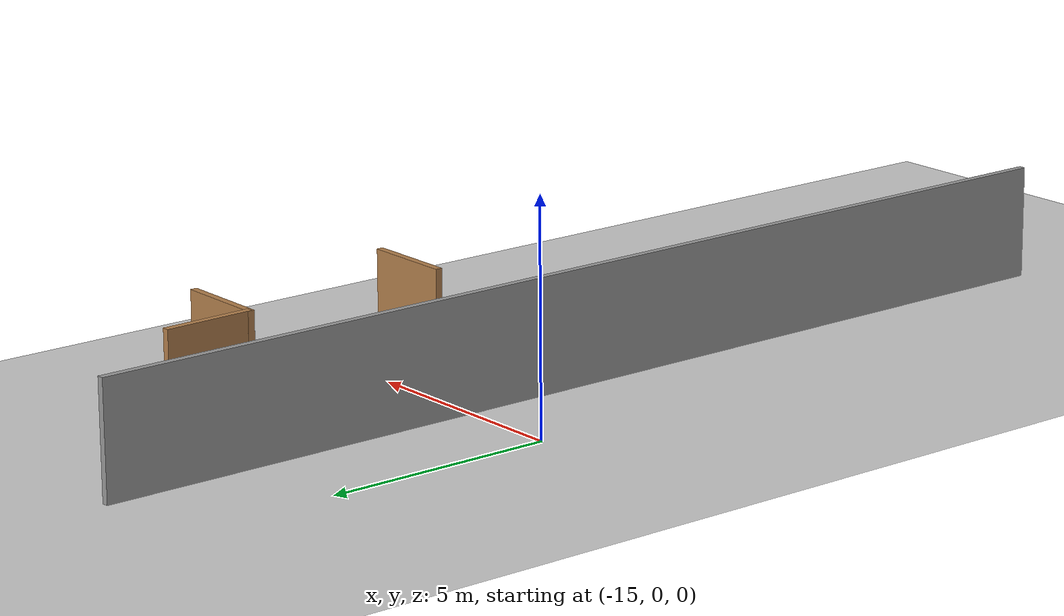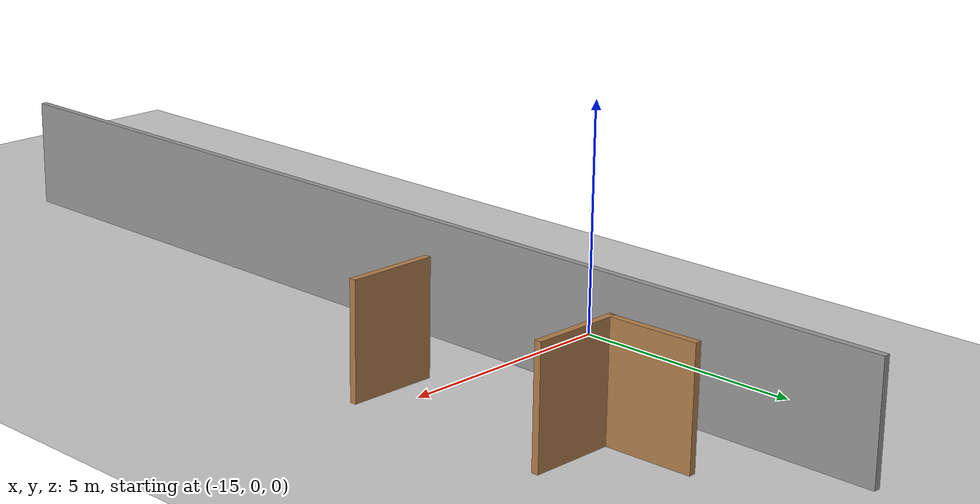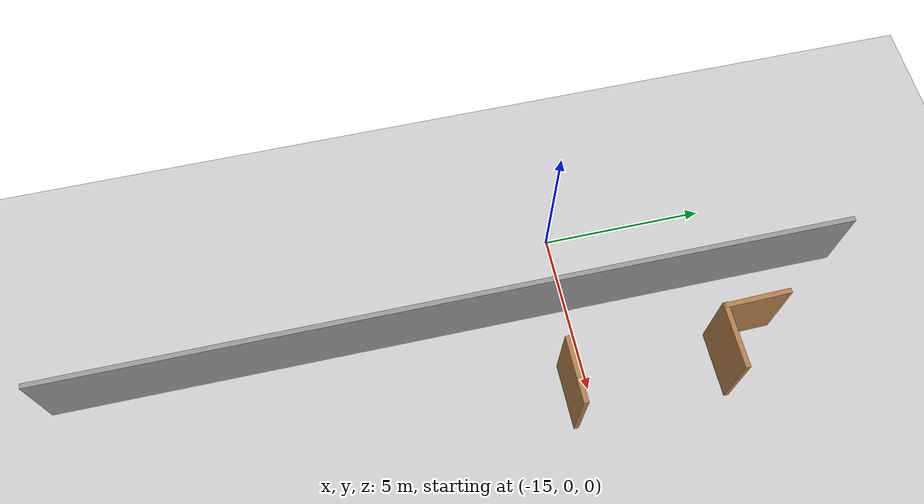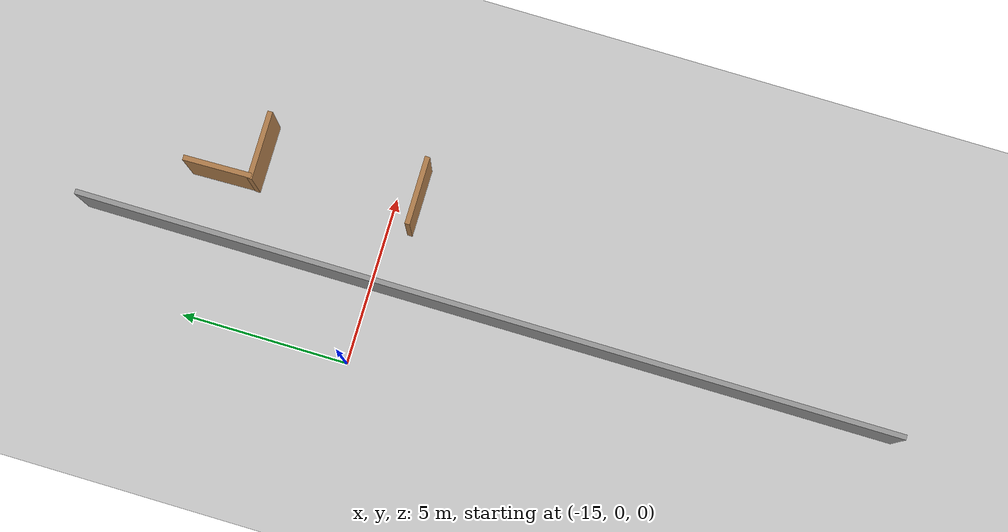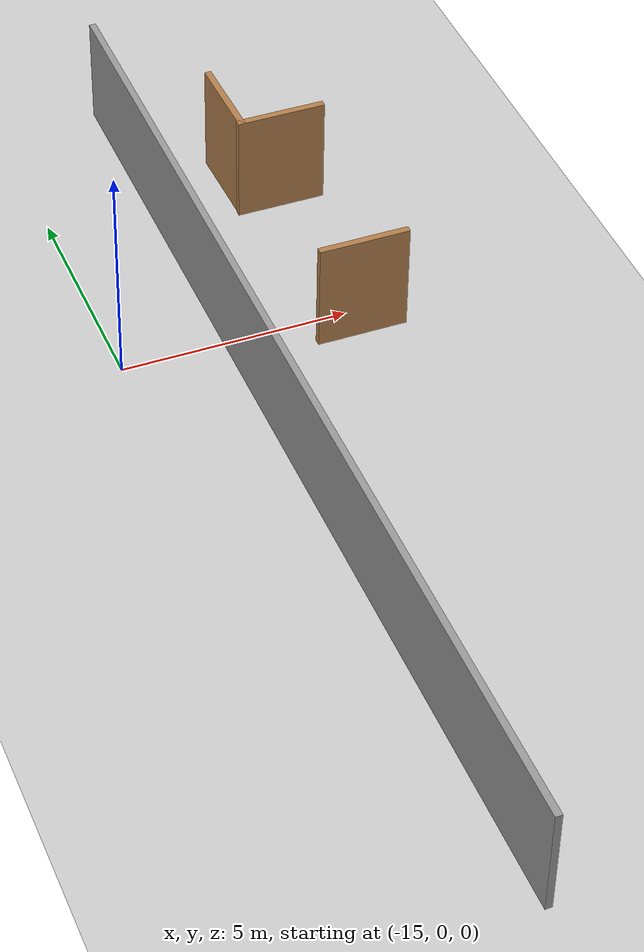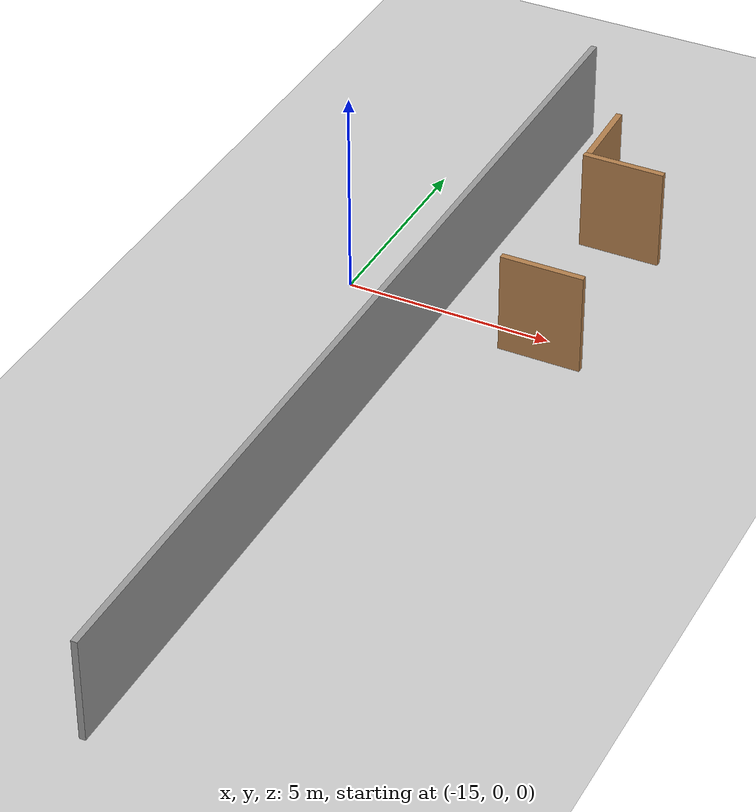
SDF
<sdf version="1.6">
 <world name="default">
  <model name="ground_plane">
   <static>1</static>
   <link name="link">
    <collision name="collision">
     <geometry><plane><normal>0 0 1</normal><size>100 100</size></plane></geometry>
     <surface><friction><ode><mu>100</mu><mu2>50</mu2></ode></friction></surface>
    </collision>
    <visual name="visual">
     <cast_shadows>0</cast_shadows>
     <geometry><plane><normal>0 0 1</normal><size>100 100</size></plane></geometry>
     <material>
      <script><uri>file://media/materials/scripts/gazebo.material</uri><name>Gazebo/Grey</name></script>
     </material>
    </visual>
   </link>
  </model>
  <model name="rbcp_final4">
   <link name="Wall_49">
    <pose>-17.6 0.125 2.5 0 -0 1.5708</pose>
    <visual name="Wall_49_Visual">
     <pose>0 0 1.25 0 -0 0</pose>
     <geometry><box><size>24.25 0.15 2.5</size></box></geometry>
     <material>
      <script><uri>file://media/materials/scripts/gazebo.material</uri><name>Gazebo/Grey</name></script>
      <ambient>1 1 1 1</ambient>
      <diffuse>0.7 0.7 0.7 1</diffuse>
      <specular>0.01 0.01 0.01 1</specular>
      <emissive>0 0 0 1</emissive>
     </material>
    </visual>
    <collision name="Wall_49_Collision">
     <pose>0 0 1.25 0 -0 0</pose>
     <geometry><box><size>24.25 0.15 2.5</size></box></geometry>
     <surface>
      <friction>
       <ode><mu>1</mu><mu2>1</mu2><fdir1>0 0 0</fdir1><slip1>0</slip1><slip2>0</slip2></ode>
       <torsional>
        <coefficient>1</coefficient>
        <patch_radius>0</patch_radius>
        <surface_radius>0</surface_radius>
        <use_patch_radius>1</use_patch_radius>
        <ode><slip>0</slip></ode>
       </torsional>
      </friction>
      <bounce><restitution_coefficient>0</restitution_coefficient><threshold>1e+06</threshold></bounce>
      <contact>
       <collide_without_contact>0</collide_without_contact>
       <collide_without_contact_bitmask>1</collide_without_contact_bitmask>
       <collide_bitmask>1</collide_bitmask>
       <ode>
        <soft_cfm>0</soft_cfm>
        <soft_erp>0.2</soft_erp>
        <kp>1e+13</kp>
        <kd>1</kd>
        <max_vel>0.01</max_vel>
        <min_depth>0</min_depth>
       </ode>
       <bullet>
        <split_impulse>1</split_impulse>
        <split_impulse_penetration_threshold>-0.01</split_impulse_penetration_threshold>
        <soft_cfm>0</soft_cfm>
        <soft_erp>0.2</soft_erp>
        <kp>1e+13</kp>
        <kd>1</kd>
       </bullet>
      </contact>
     </surface>
    </collision>
   </link>
   <static>1</static>
   <pose>4.93057 -3.68418 -2.5 0 -0 0</pose>
  </model>
  <model name="tr_maze_lay_1_clone_11">
   <pose>-9.89967 -0.654858 0 0 -0 0</pose>
   <link name="Wall_21">
    <collision name="Wall_21_Collision">
     <geometry><box><size>2 0.15 2.5</size></box></geometry>
     <pose>0 0 1.25 0 -0 0</pose>
    </collision>
    <visual name="Wall_21_Visual">
     <pose>0 0 1.25 0 -0 0</pose>
     <geometry><box><size>2 0.15 2.5</size></box></geometry>
     <material>
      <script><uri>file://media/materials/scripts/gazebo.material</uri><name>Gazebo/Wood</name></script>
      <ambient>1 1 1 1</ambient>
     </material>
    </visual>
    <pose>0 0 0 0 -0 3.14159</pose>
   </link>
   <static>1</static>
  </model>
  <model name="tr_maze_lay_1_clone_7_clone_2">
   <pose>-9.92895 3.97444 0 0 -0 0</pose>
   <link name="Wall_21">
    <collision name="Wall_21_Collision">
     <geometry><box><size>2 0.15 2.5</size></box></geometry>
     <pose>0 0 1.25 0 -0 0</pose>
    </collision>
    <visual name="Wall_21_Visual">
     <pose>0 0 1.25 0 -0 0</pose>
     <geometry><box><size>2 0.15 2.5</size></box></geometry>
     <material>
      <script><uri>file://media/materials/scripts/gazebo.material</uri><name>Gazebo/Wood</name></script>
      <ambient>1 1 1 1</ambient>
     </material>
    </visual>
    <pose>0 0 0 0 -0 3.14159</pose>
   </link>
   <static>1</static>
  </model>
  <model name="tr_maze_lay_1_clone_5_clone_3_clone">
   <pose>-10.858 4.94086 0 0 0 -1.549</pose>
   <link name="Wall_21">
    <collision name="Wall_21_Collision">
     <geometry><box><size>2 0.15 2.5</size></box></geometry>
     <pose>0 0 1.25 0 -0 0</pose>
    </collision>
    <visual name="Wall_21_Visual">
     <pose>0 0 1.25 0 -0 0</pose>
     <geometry><box><size>2 0.15 2.5</size></box></geometry>
     <material>
      <script><uri>file://media/materials/scripts/gazebo.material</uri><name>Gazebo/Wood</name></script>
      <ambient>1 1 1 1</ambient>
     </material>
    </visual>
    <pose>0 0 0 0 -0 3.14159</pose>
   </link>
   <static>1</static>
  </model>
 </world>
</sdf>
